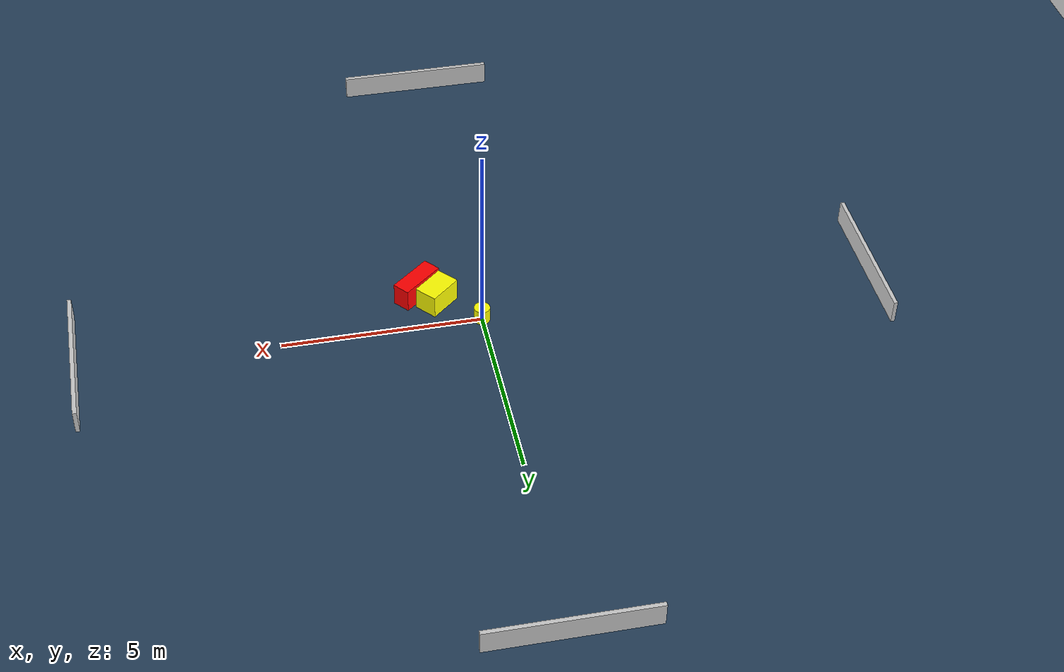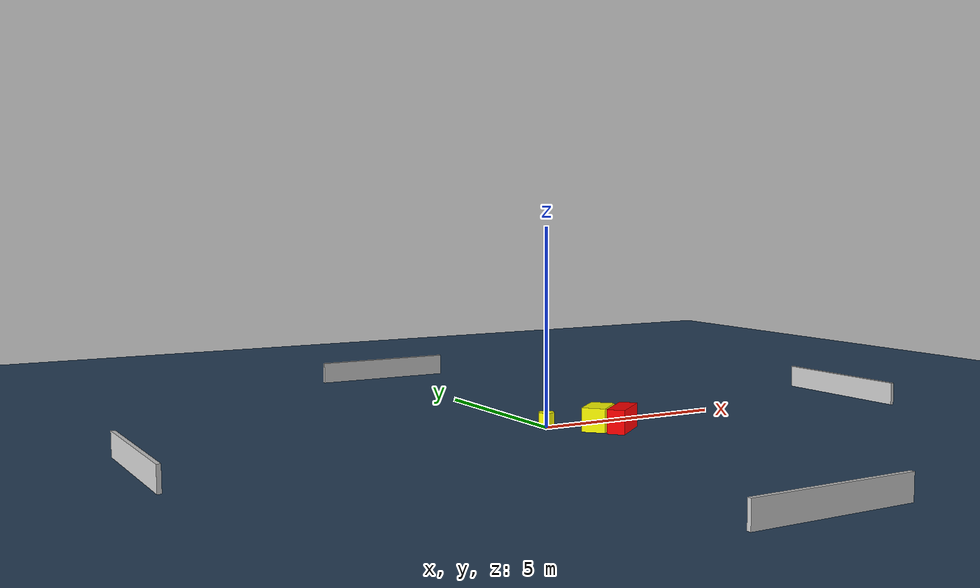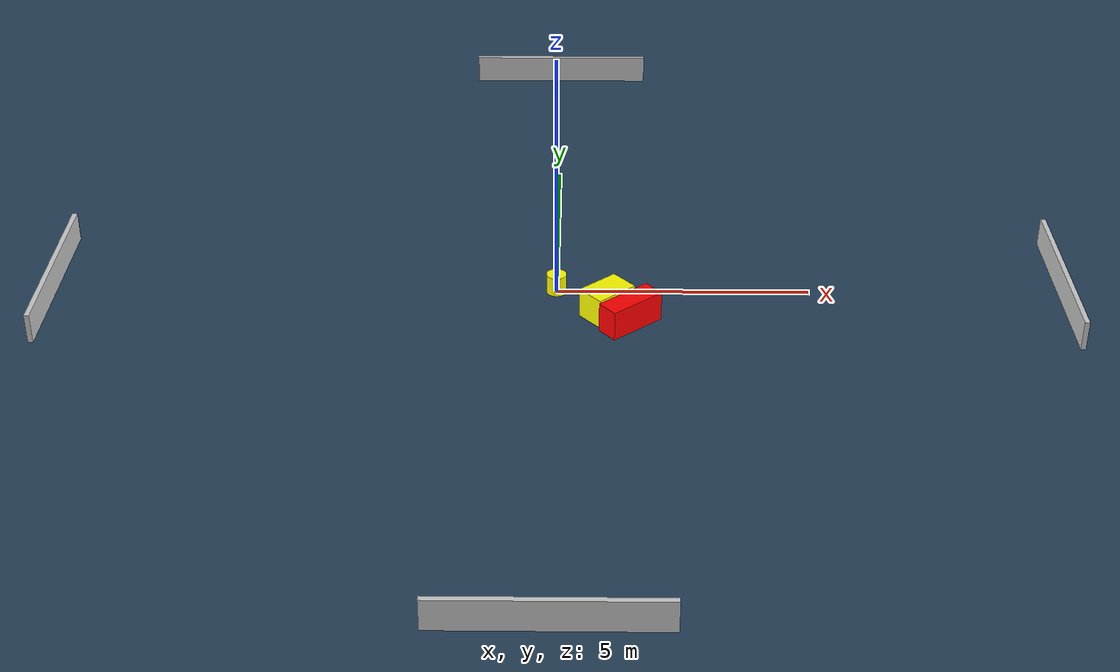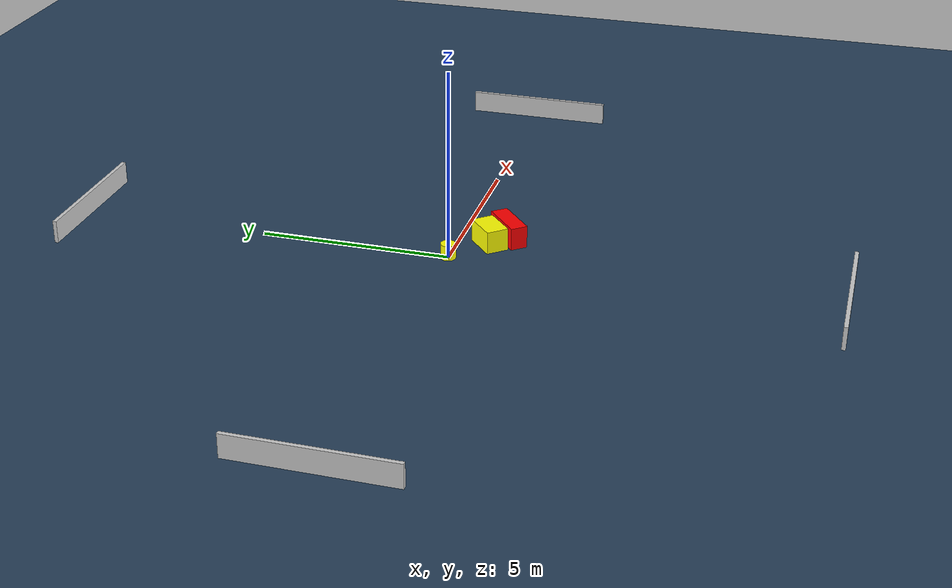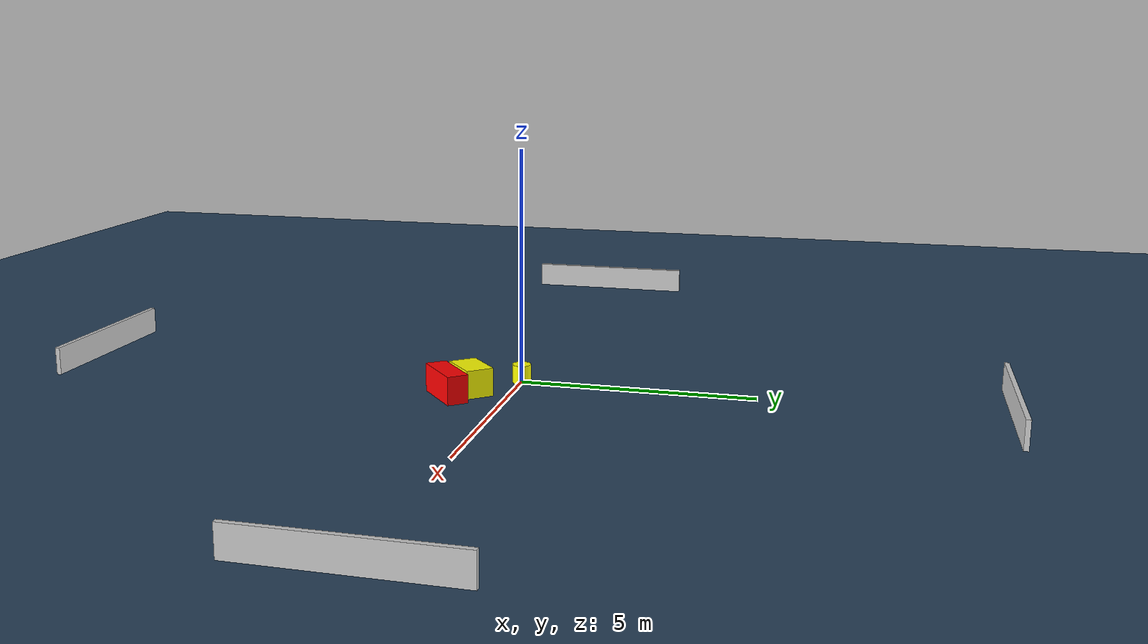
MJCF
<?xml version="1.0" ?>
<mujoco model="generated_environment">
  <option timestep="0.01" integrator="RK4" cone="elliptic"/>
  <default>
    <geom density="1"/>
  </default>
  <asset>
    <texture builtin="gradient" height="3072" name="skybox" rgb1="0.3 0.5 0.7" rgb2="0 0 0" type="skybox" width="512"/>
    <texture builtin="checker" height="300" name="groundplane" rgb1="0.2 0.3 0.4" rgb2="0.1 0.2 0.3" type="2d" width="300"/>
    <material name="groundplane" reflectance="0.2" texrepeat="5 5" texture="groundplane"/>
  </asset>
  <worldbody>
    <light dir="0 0 -1" directional="true" pos="0 0 1.5"/>
    <geom condim="3" friction="0.5 0.005 0.001" material="groundplane" name="floor" pos="0 0 0" size="0 0 0.05" type="plane"/>
    <body name="walls">
      <geom name="wall_1" condim="4" pos="-10.0 0.0 0.3" rgba="0.800000011920929 0.800000011920929 0.800000011920929 1.0" size="0.05 2.0 0.3" type="box"/>
      <geom name="wall_2" condim="4" pos="10.0 0.0 0.3" rgba="0.800000011920929 0.800000011920929 0.800000011920929 1.0" size="0.05 2.0 0.3" type="box"/>
      <geom name="wall_3" condim="4" pos="0.0 -10.0 0.3" rgba="0.800000011920929 0.800000011920929 0.800000011920929 1.0" size="2.0 0.05 0.3" type="box"/>
      <geom name="wall_4" condim="4" pos="0.0 10.0 0.3" rgba="0.800000011920929 0.800000011920929 0.800000011920929 1.0" size="2.0 0.05 0.3" type="box"/>
    </body>
    <body name="robot">
      <joint name="joint_x" type="slide" pos="0 0 0" axis="1 0 0"/>
      <joint name="joint_y" type="slide" pos="0 0 0" axis="0 1 0"/>
      <geom name="robot" type="cylinder" pos="0.0 0.0 0.2" size="0.2 0.2 0.0" mass="5.0" friction="1.0 0.005 0.0001" condim="4" rgba="1.0 1.0 0.0 1.0"/>
    </body>
    <body name="obstacle_1_movable">
      <geom name="obstacle_1_movable" condim="4" pos="0.9919017276037015 -0.8323290961555783 0.3" euler="0 0 41.12711111901252" friction="0.0 0.005 0.001" rgba="1.0 1.0 0.0 1.0" size="0.4494447727544464 0.2980101308000843 0.3" type="box" mass="0.1"/>
      <joint type="free"/>
    </body>
    <body name="obstacle_2_static">
      <geom name="obstacle_2_static" condim="4" pos="1.4366857028466393 -1.227150502420229 0.3" euler="0 0 130.04933830202472" friction="0.0 0.005 0.001" rgba="1.0 0.0 0.0 1.0" size="0.22649770954064177 0.5987388541869131 0.3" type="box"/>
    </body>
  </worldbody>
  <actuator>
    <motor name="actuator_x" joint="joint_x" gear="1" ctrlrange="-1 1"/>
    <motor name="actuator_y" joint="joint_y" gear="1" ctrlrange="-1 1"/>
  </actuator>
</mujoco>
